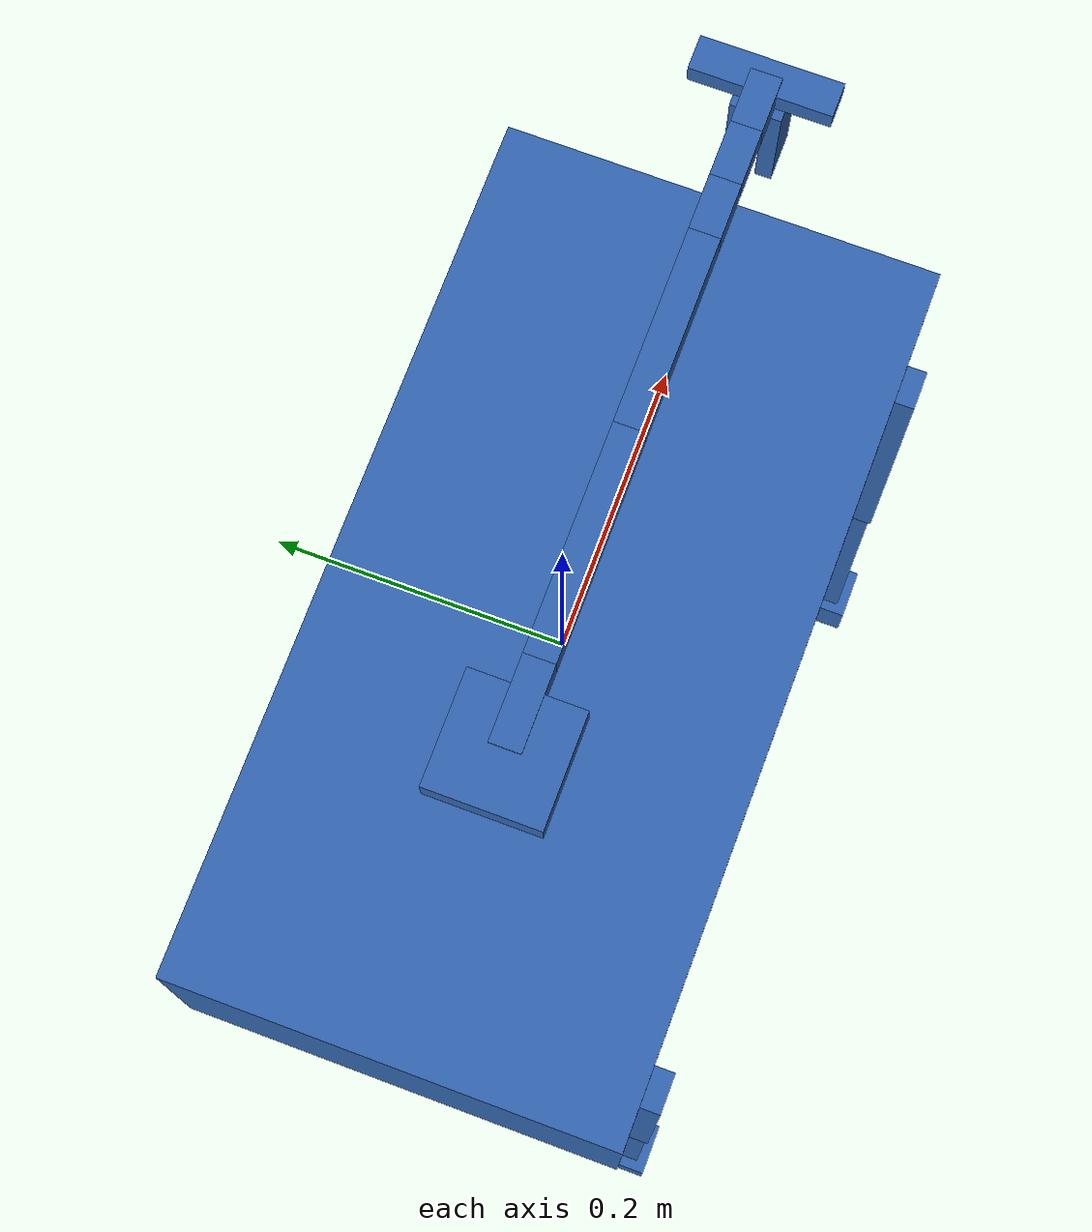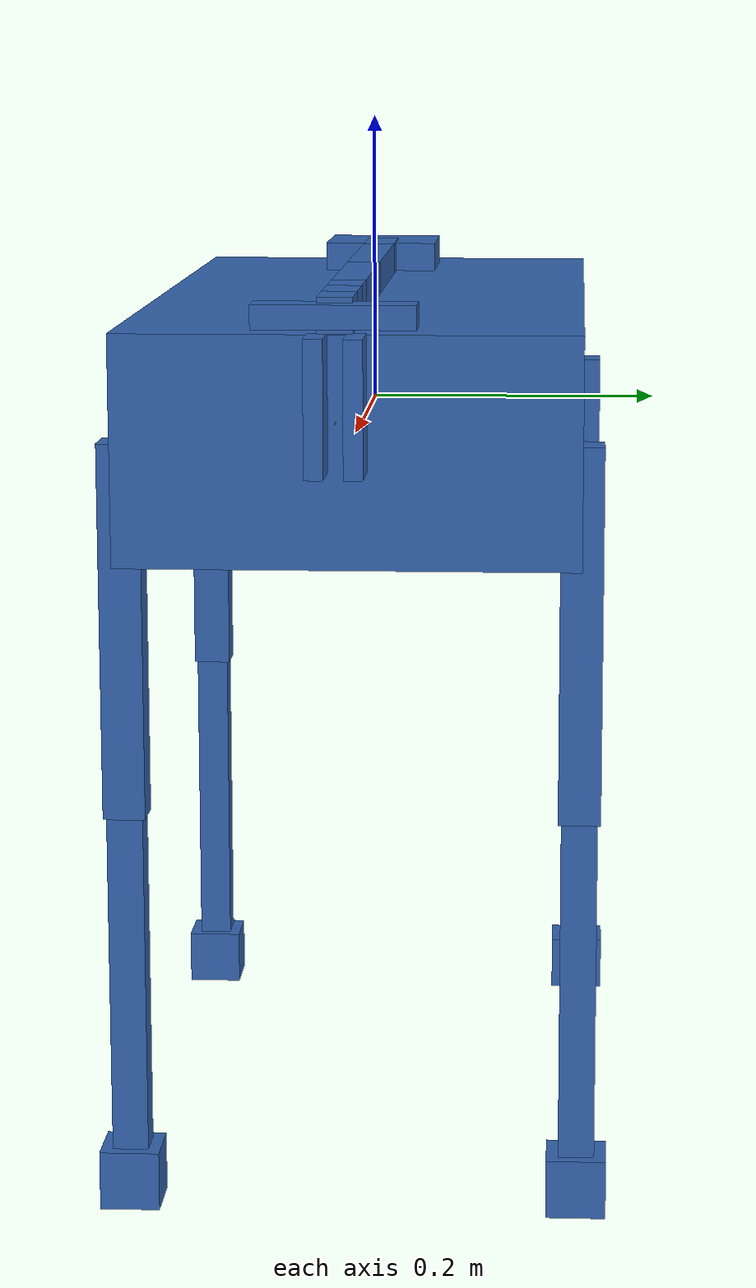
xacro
<robot xmlns:xacro="http://www.ros.org/wiki/xacro" name="ch13_mobile_manipulator">
<xacro:include filename="common/inertial_macros.xacro"/><xacro:include filename="quadruped_base.urdf.xacro"/><xacro:include filename="arm_6dof.urdf.xacro"/>
<xacro:quadruped_base/><xacro:arm_6dof parent="base_link" mount_xyz="-0.10 0 0.095" mount_rpy="0 0 0"/>
<xacro:include filename="gazebo_control.xacro"/></robot>

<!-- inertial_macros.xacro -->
<robot xmlns:xacro="http://www.ros.org/wiki/xacro">
<xacro:macro name="box_link" params="name mass sx sy sz xyz:='0 0 0'">
<link name="${name}"><inertial><origin xyz="${xyz}"/><mass value="${mass}"/><inertia ixx="${mass*(sy*sy+sz*sz)/12}" iyy="${mass*(sx*sx+sz*sz)/12}" izz="${mass*(sx*sx+sy*sy)/12}" ixy="0" ixz="0" iyz="0"/></inertial>
<visual><origin xyz="${xyz}"/><geometry><box size="${sx} ${sy} ${sz}"/></geometry><material name="blue"><color rgba="0.2 0.4 0.7 1"/></material></visual>
<collision><origin xyz="${xyz}"/><geometry><box size="${sx} ${sy} ${sz}"/></geometry></collision></link></xacro:macro>
<xacro:macro name="hinge" params="name parent child xyz axis lower upper">
<joint name="${name}" type="revolute"><parent link="${parent}"/><child link="${child}"/><origin xyz="${xyz}"/><axis xyz="${axis}"/><limit lower="${lower}" upper="${upper}" effort="40" velocity="4"/><dynamics damping="1"/></joint></xacro:macro></robot>

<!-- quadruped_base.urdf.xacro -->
<robot xmlns:xacro="http://www.ros.org/wiki/xacro">
<!-- Ch11 dimensions/masses; remove baked 1.2/-2.4 origins, use explicit nominal joint coordinates. -->
<xacro:macro name="leg" params="prefix x y">
<xacro:box_link name="${prefix}_hip_link" mass="0.2" sx="0.08" sy="0.04" sz="0.04"/>
<xacro:hinge name="${prefix}_hip_joint" parent="base_link" child="${prefix}_hip_link" xyz="${x} ${y} 0" axis="1 0 0" lower="-0.8" upper="0.8"/>
<xacro:box_link name="${prefix}_thigh_link" mass="0.7" sx="0.028" sy="0.028" sz="0.25" xyz="0 0 -0.125"/>
<xacro:hinge name="${prefix}_thigh_joint" parent="${prefix}_hip_link" child="${prefix}_thigh_link" xyz="0 ${0.05 if y > 0 else -0.05} 0" axis="0 1 0" lower="-1" upper="4"/>
<xacro:box_link name="${prefix}_calf_link" mass="0.5" sx="0.024" sy="0.024" sz="0.25" xyz="0 0 -0.125"/>
<xacro:hinge name="${prefix}_calf_joint" parent="${prefix}_thigh_link" child="${prefix}_calf_link" xyz="0 0 -0.25" axis="0 1 0" lower="-2.8" upper="2.8"/>
<xacro:box_link name="${prefix}_foot" mass="0.1" sx="0.04" sy="0.04" sz="0.04"/>
<joint name="${prefix}_foot_fixed" type="fixed"><parent link="${prefix}_calf_link"/><child link="${prefix}_foot"/><origin xyz="0 0 -0.25"/></joint>
</xacro:macro><xacro:macro name="quadruped_base" params="parent:=''">
<xacro:box_link name="base_footprint" mass="0.000001" sx="0.001" sy="0.001" sz="0.001"/>
<xacro:box_link name="base_link" mass="6" sx="0.60" sy="0.30" sz="0.15"/>
<joint name="base_fixed" type="fixed"><parent link="base_footprint"/><child link="base_link"/></joint>
<xacro:leg prefix="fr" x="0.25" y="-0.10"/><xacro:leg prefix="fl" x="0.25" y="0.10"/>
<xacro:leg prefix="rr" x="-0.25" y="-0.10"/><xacro:leg prefix="rl" x="-0.25" y="0.10"/>
</xacro:macro></robot>

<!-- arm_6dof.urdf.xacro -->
<robot xmlns:xacro="http://www.ros.org/wiki/xacro"><!-- Ch08 Z-Y-Y-X-Y-Z concept, scaled primitive arm. -->
<xacro:macro name="arm_6dof" params="parent mount_xyz mount_rpy">
<xacro:box_link name="arm_mount" mass="0.08" sx="0.08" sy="0.08" sz="0.02"/>
<joint name="arm_mount_fixed" type="fixed"><parent link="${parent}"/><child link="arm_mount"/><origin xyz="${mount_xyz}" rpy="${mount_rpy}"/></joint>
<xacro:box_link name="arm_link_1" mass="0.08" sx="0.06" sy="0.022" sz="0.022" xyz="0.03 0 0"/>
<xacro:hinge name="arm_joint_1" parent="arm_mount" child="arm_link_1" xyz="0 0 0" axis="0 0 1" lower="-3.14" upper="3.14"/>
<xacro:box_link name="arm_link_2" mass="0.15" sx="0.16" sy="0.022" sz="0.022" xyz="0.08 0 0"/>
<xacro:hinge name="arm_joint_2" parent="arm_link_1" child="arm_link_2" xyz="0.06 0 0" axis="0 1 0" lower="-2" upper="2"/>
<xacro:box_link name="arm_link_3" mass="0.12" sx="0.14" sy="0.022" sz="0.022" xyz="0.07 0 0"/>
<xacro:hinge name="arm_joint_3" parent="arm_link_2" child="arm_link_3" xyz="0.16 0 0" axis="0 1 0" lower="-2.4" upper="2.4"/>
<xacro:box_link name="arm_link_4" mass="0.05" sx="0.04" sy="0.022" sz="0.022" xyz="0.02 0 0"/>
<xacro:hinge name="arm_joint_4" parent="arm_link_3" child="arm_link_4" xyz="0.14 0 0" axis="1 0 0" lower="-3.14" upper="3.14"/>
<xacro:box_link name="arm_link_5" mass="0.04" sx="0.04" sy="0.022" sz="0.022" xyz="0.02 0 0"/>
<xacro:hinge name="arm_joint_5" parent="arm_link_4" child="arm_link_5" xyz="0.04 0 0" axis="0 1 0" lower="-2" upper="2"/>
<xacro:box_link name="arm_link_6" mass="0.04" sx="0.04" sy="0.022" sz="0.022" xyz="0.02 0 0"/>
<xacro:hinge name="arm_joint_6" parent="arm_link_5" child="arm_link_6" xyz="0.04 0 0" axis="0 0 1" lower="-3.14" upper="3.14"/>
<xacro:box_link name="tool0" mass="0.04" sx="0.025" sy="0.10" sz="0.015"/>
<joint name="tool_fixed" type="fixed"><parent link="arm_link_6"/><child link="tool0"/><origin xyz="0.04 0 0"/></joint>
<xacro:box_link name="grasp_site" mass="0.000001" sx="0.001" sy="0.001" sz="0.001"/>
<joint name="grasp_fixed" type="fixed"><parent link="tool0"/><child link="grasp_site"/><origin xyz="0 0 -0.065"/></joint>
<xacro:box_link name="gripper_left" mass="0.025" sx="0.035" sy="0.012" sz="0.085" xyz="0 0 -0.055"/>
<joint name="gripper_left_joint" type="prismatic"><parent link="tool0"/><child link="gripper_left"/><origin xyz="0 0.012 0"/><axis xyz="0 1 0"/><limit lower="0" upper="0.04" effort="25" velocity="0.2"/><dynamics damping="2"/></joint>
<gazebo reference="gripper_left"><mu1>2</mu1><mu2>2</mu2></gazebo>
<xacro:box_link name="gripper_right" mass="0.025" sx="0.035" sy="0.012" sz="0.085" xyz="0 0 -0.055"/>
<joint name="gripper_right_joint" type="prismatic"><parent link="tool0"/><child link="gripper_right"/><origin xyz="0 -0.012 0"/><axis xyz="0 -1 0"/><limit lower="0" upper="0.04" effort="25" velocity="0.2"/><dynamics damping="2"/></joint>
<gazebo reference="gripper_right"><mu1>2</mu1><mu2>2</mu2></gazebo>
</xacro:macro></robot>
